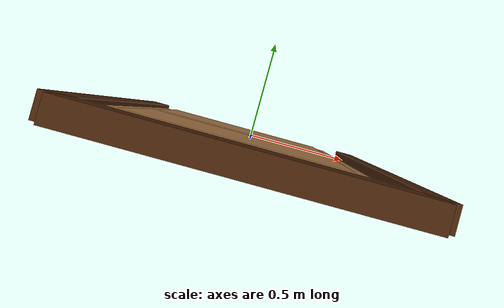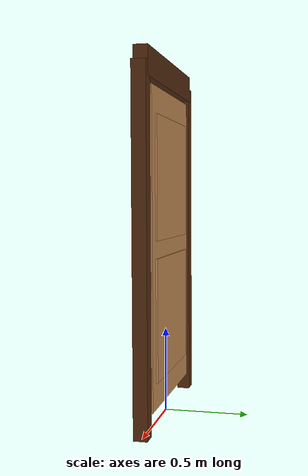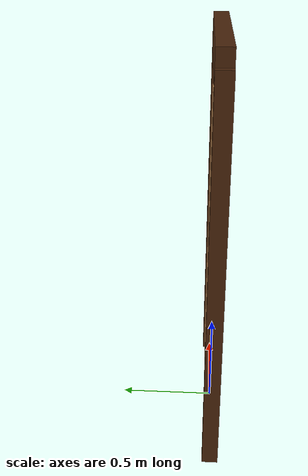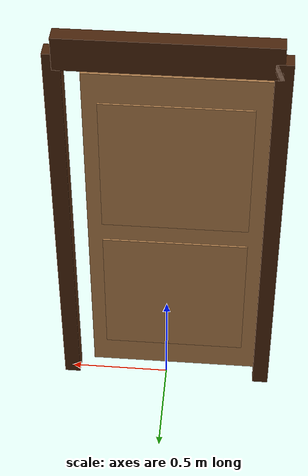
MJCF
<?xml version="1.0" encoding="utf-8"?>
<!-- Door with handle - based on Robosuite research-tested design -->

<mujoco model="door">
  <asset>
    <!-- Wood texture for door -->
    <texture name="wood" type="2d" file="/home/gal-labs/PycharmProjects/echo_robot/stretch_mujoco/simulation_center/core/modals/mujoco_assets/furniture/desk/textures/wood0.png"/>
    <material name="wood_material" texture="wood" texrepeat="2 4" specular="0.1" shininess="0.1"/>

    <!-- Metal texture for handle -->
    <texture name="metal" type="2d" file="/home/gal-labs/PycharmProjects/echo_robot/stretch_mujoco/simulation_center/core/modals/mujoco_assets/furniture/desk/textures/metal0.png"/>
    <material name="metal_material" texture="metal" specular="0.9" shininess="0.5"/>
  </asset>

  <worldbody>
    <body name="door_frame" pos="0 0 1">
      <!-- Frame -->
      <geom name="frame_left" type="box" size="0.04 0.04 1.0" pos="-0.5 0 0" rgba="0.3 0.15 0.05 1"/>
      <geom name="frame_right" type="box" size="0.04 0.04 1.0" pos="0.5 0 0" rgba="0.3 0.15 0.05 1"/>
      <geom name="frame_top" type="box" size="0.5 0.04 0.08" pos="0 0 1.0" rgba="0.3 0.15 0.05 1"/>

      <!-- Wooden door -->
      <body name="door" pos="-0.46 0 0">
        <inertial pos="0.4 0 0" mass="8" diaginertia="1.3 1.0 0.3"/>

        <joint name="door_hinge" type="hinge" axis="0 0 1" range="0 1.57" damping="1" frictionloss="0.5" limited="true"/>

        <!-- Main wooden panel -->
        <geom name="door_panel" type="box" size="0.42 0.025 0.9" pos="0.42 0 0" material="wood_material"/>

        <!-- Wood grain details -->
        <geom name="panel_upper" type="box" size="0.35 0.03 0.35" pos="0.42 0.005 0.4" material="wood_material"/>
        <geom name="panel_lower" type="box" size="0.35 0.03 0.35" pos="0.42 0.005 -0.4" material="wood_material"/>

        <!-- Metal handle -->
        <body name="handle" pos="0.7 0 0">
          <!-- Metal knob -->
          <geom name="handle_knob" type="sphere" size="0.025" pos="0 0 0" rgba="0.85 0.85 0.85 1"/>
          <!-- Metal stem -->
          <geom name="handle_stem" type="cylinder" size="0.015 0.02" pos="0 0 0" rgba="0.8 0.8 0.8 1"/>
          <site name="door_handle" pos="0 0 0" size="0.03" rgba="0 0 1 0"/>
        </body>
      </body>
    </body>
  </worldbody>
</mujoco>
